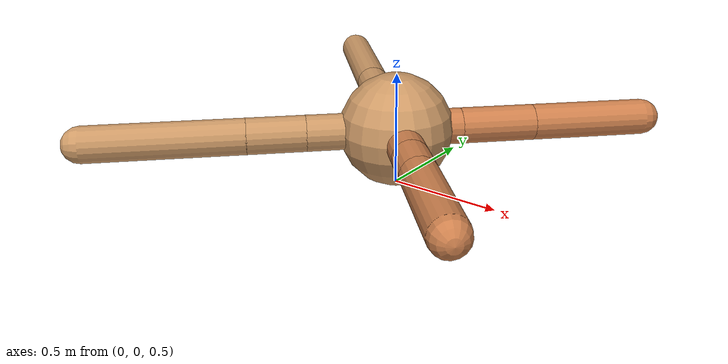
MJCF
<mujoco model="ant">
  <compiler angle="degree" coordinate="local" inertiafromgeom="true" />
  <option integrator="RK4" timestep="0.01" />
  <custom>
    <numeric data="0.0 0.0 0.55 1.0 0.0 0.0 0.0 0.0 1.0 0.0 -1.0 0.0 -1.0 0.0 1.0" name="init_qpos" />
  </custom>
  <default>
    <joint armature="1" damping="1" limited="true" />
    <geom conaffinity="0" condim="3" density="5.0" friction="1.5 0.1 0.1" margin="0.01" rgba="0.8 0.6 0.4 1" />
  </default>
  <worldbody>
    <body name="torso" pos="0 0 0.75">
      <geom name="torso_geom" pos="0 0 0" size="0.25" type="sphere" />

      <body name="front_left_leg" pos="0 0 0">
        <geom fromto="0.0 0.0 0.0 0.2040707419414227 0.2040707419414227 0.0" name="aux_1_geom" size="0.08" type="capsule" rgba=".8 .5 .3 1" />
        <body name="aux_1" pos="0.2040707419414227 0.2040707419414227 0.0">
          <joint axis="0 0 1" name="hip_1" pos="0.0 0.0 0.0" range="-40 40" type="hinge" />
          <geom fromto="0.0 0.0 0.0 0.23240516444867662 0.23240516444867662 0.0" name="left_leg_geom" size="0.08" type="capsule" rgba=".8 .5 .3 1" />
          <body pos="0.23240516444867662 0.23240516444867662 0.0" name="front_left_foot">
            <joint axis="-1 1 0" name="ankle_1" pos="0.0 0.0 0.0" range="30 100" type="hinge" />
            <geom fromto="0.0 0.0 0.0 0.3633877280535659 0.3633877280535659 0.0" name="left_ankle_geom" size="0.08" type="capsule" rgba=".8 .5 .3 1" />
          </body>
        </body>
      </body>
      <body name="front_right_leg" pos="0 0 0">
        <geom fromto="0.0 0.0 0.0 -0.23775544188517023 0.23775544188517023 0.0" name="aux_2_geom" size="0.08" type="capsule" />
        <body name="aux_2" pos="-0.23775544188517023 0.23775544188517023 0.0">
          <joint axis="0 0 1" name="hip_2" pos="0.0 0.0 0.0" range="-40 40" type="hinge" />
          <geom fromto="0.0 0.0 0.0 -0.2603612943406028 0.2603612943406028 0.0" name="right_leg_geom" size="0.08" type="capsule" />
          <body pos="-0.2603612943406028 0.2603612943406028 0.0" name="front_right_foot">
            <joint axis="1 1 0" name="ankle_2" pos="0.0 0.0 0.0" range="-100 -30" type="hinge" />
            <geom fromto="0.0 0.0 0.0 -0.5052013158661156 0.5052013158661156 0.0" name="right_ankle_geom" size="0.08" type="capsule" />
          </body>
        </body>
      </body>
      <body name="left_back_leg" pos="0 0 0">
        <geom fromto="0.0 0.0 0.0 -0.2793552929377385 -0.2793552929377385 0.0" name="aux_3_geom" size="0.08" type="capsule" />
        <body name="aux_3" pos="-0.2793552929377385 -0.2793552929377385 0.0">
          <joint axis="0 0 1" name="hip_3" pos="0.0 0.0 0.0" range="-40 40" type="hinge" />
          <geom fromto="0.0 0.0 0.0 -0.1806418117062278 -0.1806418117062278 0.0" name="back_leg_geom" size="0.08" type="capsule" />
          <body pos="-0.1806418117062278 -0.1806418117062278 0.0" name="left_back_foot">
            <joint axis="-1 1 0" name="ankle_3" pos="0.0 0.0 0.0" range="-100 -30" type="hinge" />
            <geom fromto="0.0 0.0 0.0 -0.48273287055627334 -0.48273287055627334 0.0" name="third_ankle_geom" size="0.08" type="capsule" />
          </body>
        </body>
      </body>
      <body name="right_back_leg" pos="0 0 0">
        <geom fromto="0.0 0.0 0.0 0.23987289816043966 -0.23987289816043966 0.0" name="aux_4_geom" size="0.08" type="capsule" rgba=".8 .5 .3 1" />
        <body name="aux_4" pos="0.23987289816043966 -0.23987289816043966 0.0">
          <joint axis="0 0 1" name="hip_4" pos="0.0 0.0 0.0" range="-40 40" type="hinge" />
          <geom fromto="0.0 0.0 0.0 0.12056090744727394 -0.12056090744727394 0.0" name="rightback_leg_geom" size="0.08" type="capsule" rgba=".8 .5 .3 1" />
          <body pos="0.12056090744727394 -0.12056090744727394 0.0" name="right_back_foot">
            <joint axis="1 1 0" name="ankle_4" pos="0.0 0.0 0.0" range="30 100" type="hinge" />
            <geom fromto="0.0 0.0 0.0 0.3458655157266609 -0.3458655157266609 0.0" name="fourth_ankle_geom" size="0.08" type="capsule" rgba=".8 .5 .3 1" />
          </body>
        </body>
      </body>
    </body>
  </worldbody>
  <actuator>
    <motor ctrllimited="true" ctrlrange="-1.0 1.0" joint="hip_4" gear="150" />
    <motor ctrllimited="true" ctrlrange="-1.0 1.0" joint="ankle_4" gear="150" />
    <motor ctrllimited="true" ctrlrange="-1.0 1.0" joint="hip_1" gear="150" />
    <motor ctrllimited="true" ctrlrange="-1.0 1.0" joint="ankle_1" gear="150" />
    <motor ctrllimited="true" ctrlrange="-1.0 1.0" joint="hip_2" gear="150" />
    <motor ctrllimited="true" ctrlrange="-1.0 1.0" joint="ankle_2" gear="150" />
    <motor ctrllimited="true" ctrlrange="-1.0 1.0" joint="hip_3" gear="150" />
    <motor ctrllimited="true" ctrlrange="-1.0 1.0" joint="ankle_3" gear="150" />
  </actuator>
</mujoco>
